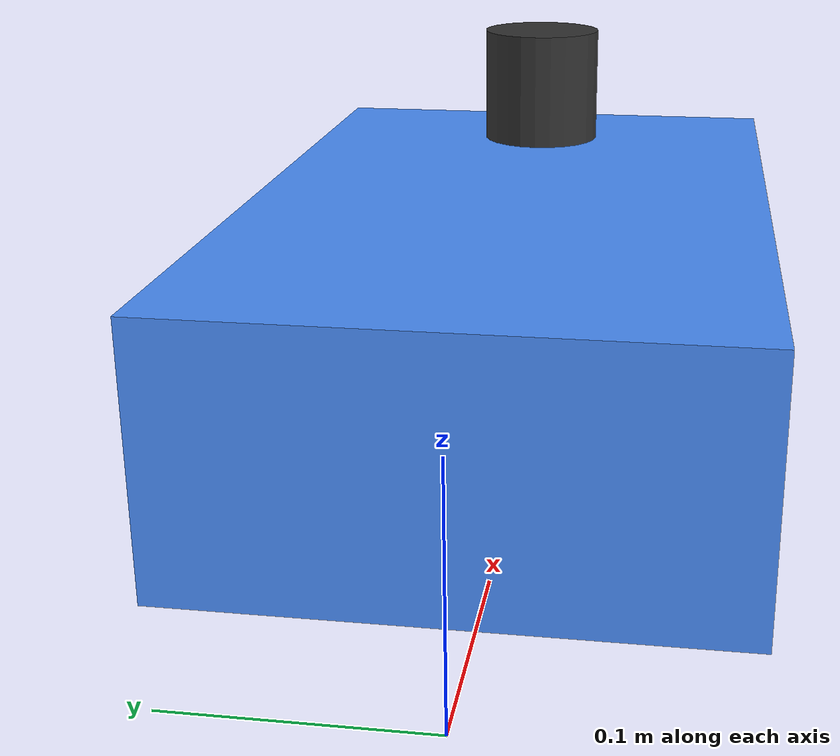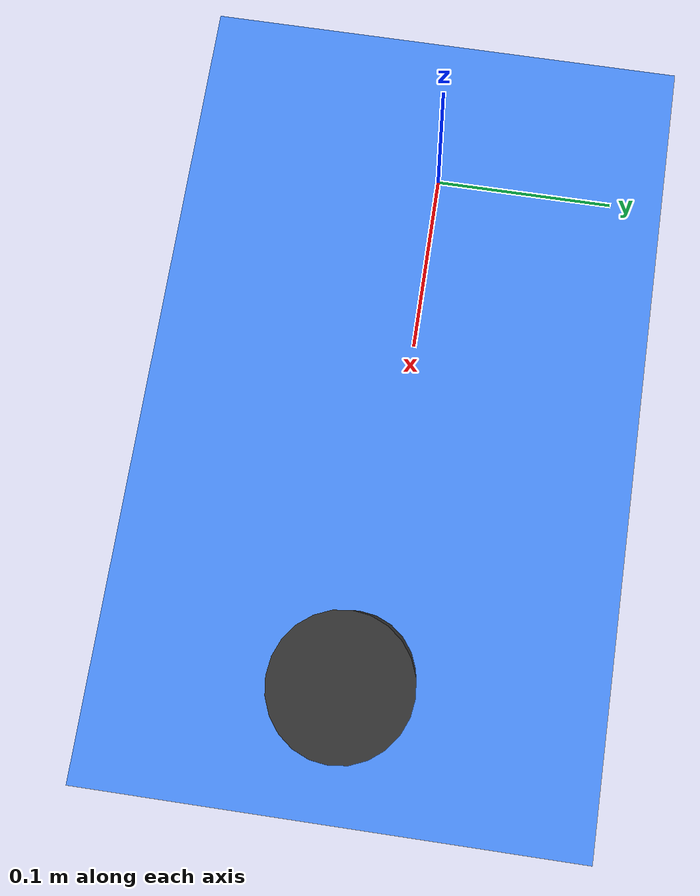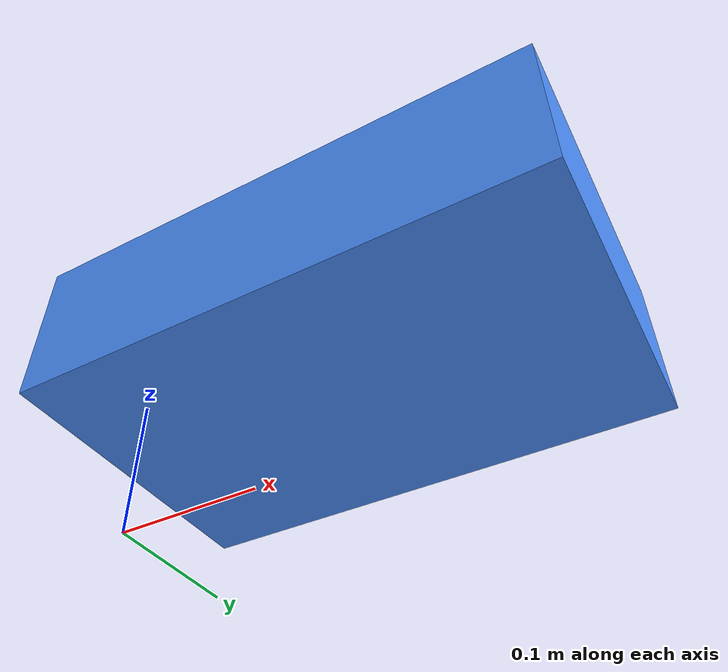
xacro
<?xml version="1.0"?>

<!-- A simple model of the racecar for rviz -->

<robot xmlns:xacro="http://www.ros.org/wiki/xacro" name="racecar">

  <xacro:property name="wheelbase" value="0.3302" />
  <xacro:property name="width" value="0.2032" />
  <xacro:property name="height" value="0.1" />
  <xacro:property name="ground_offset" value="0.04" />
  <xacro:property name="wheel_radius" value="0.0508" />
  <xacro:property name="wheel_length" value="0.0381" />
  <xacro:property name="laser_distance_from_base_link" value="0.275" />
  <xacro:property name="laser_height" value="0.05" />
  <xacro:property name="laser_radius" value="0.026" />

  <material name="black">
    <color rgba="0.2 0.2 0.2 1."/>
  </material>

  <material name="blue">
    <color rgba="0.3 0.57 1. 1."/>
  </material>

  <link name="base_link">
    <visual>
      <origin xyz="${wheelbase/2} 0 ${ground_offset+height/2}"/>
      <geometry>
        <box size="${wheelbase} ${width} ${height}"/>
      </geometry>
      <material name="blue"/>
    </visual>
  </link>

  <joint name="base_to_laser_model" type="fixed">
    <parent link="base_link"/>
    <child link="laser_model"/>
    <origin xyz="${laser_distance_from_base_link} 0 ${ground_offset+height+(laser_height/2)}"/>
  </joint>

  <link name="laser_model">
    <visual>
      <geometry>
        <cylinder radius="${laser_radius}" length="${laser_height}"/>
      </geometry>
      <material name="black"/>
    </visual>
  </link>

</robot>
